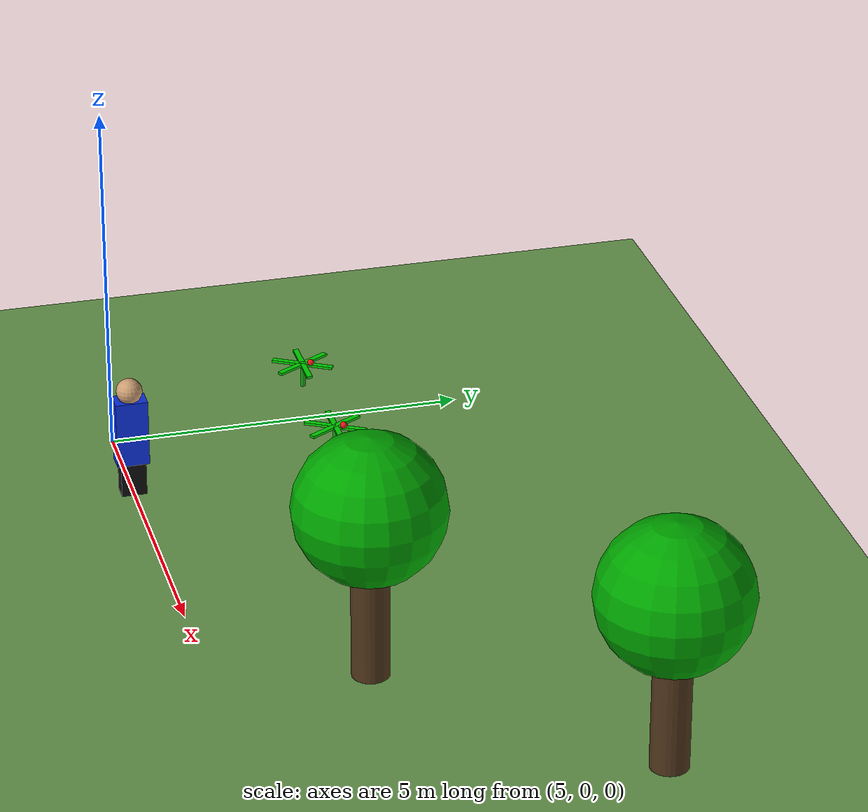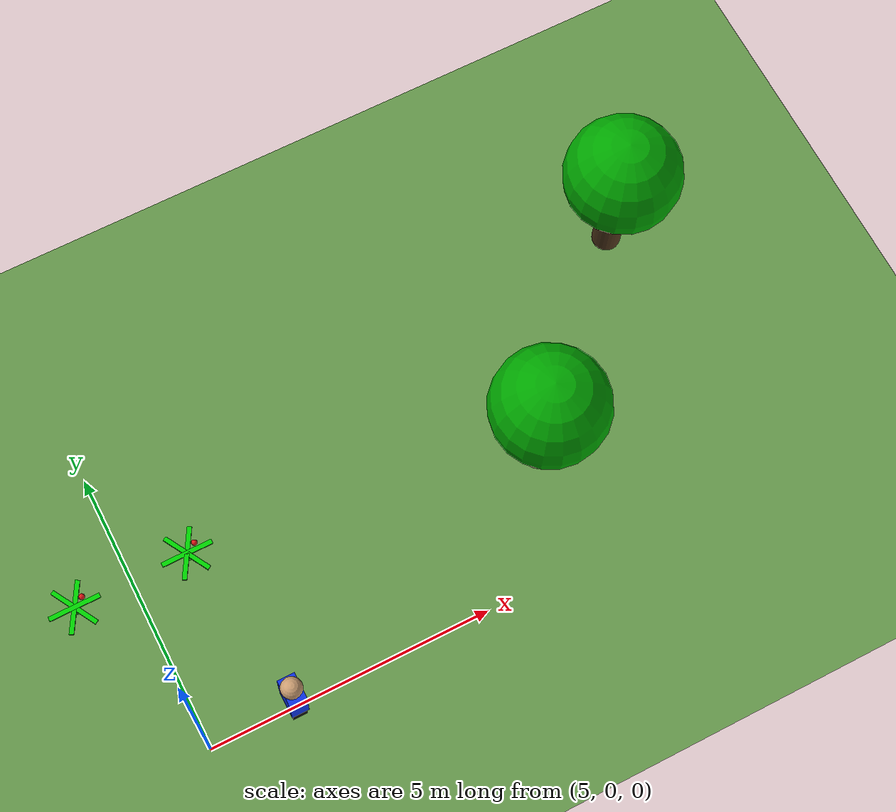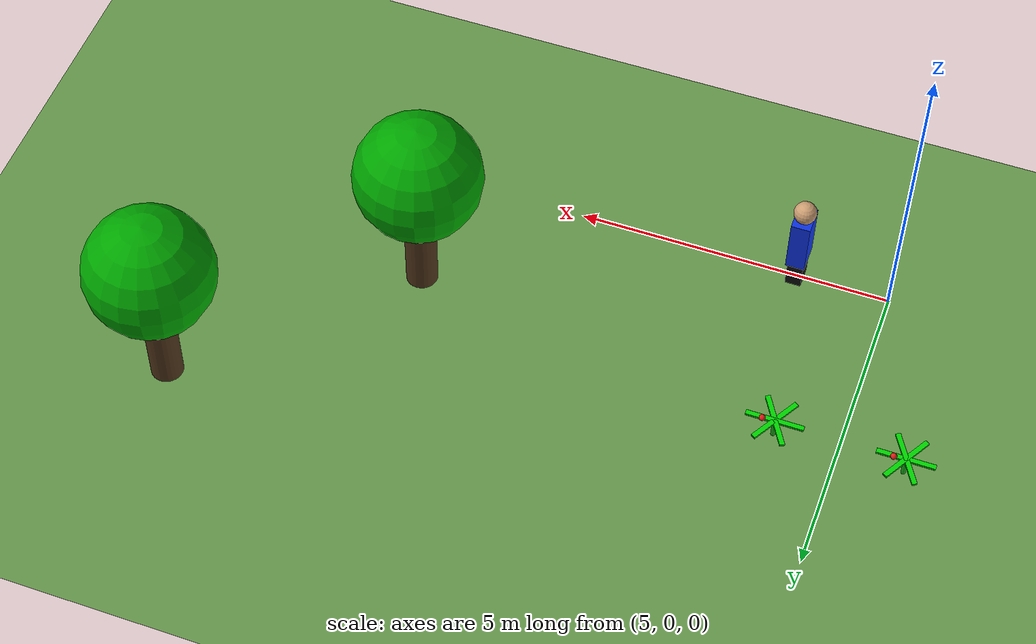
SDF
<sdf version="1.6">
 <world name="enhanced_farm_world">
  <include><uri>model://sun</uri></include>
  <model name="ground_plane">
   <static>true</static>
   <pose>0 0 -0.01 0 0 0</pose>
   <link name="link">
    <collision name="collision">
     <geometry><plane><normal>0 0 1</normal><size>200 200</size></plane></geometry>
     <surface><friction><ode><mu>0.8</mu><mu2>0.8</mu2></ode></friction></surface>
    </collision>
    <visual name="visual">
     <geometry><plane><normal>0 0 1</normal><size>200 200</size></plane></geometry>
     <material>
      <ambient>0.3 0.5 0.2 1</ambient>
      <diffuse>0.4 0.6 0.3 1</diffuse>
      <specular>0.01 0.01 0.01 1</specular>
     </material>
    </visual>
   </link>
  </model>
  <model name="crop_row1_7">
   <static>true</static>
   <pose>4 3 0 0 0 0</pose>
   <link name="crop_stem">
    <pose>0 0 0.15 0 0 0</pose>
    <collision name="collision">
     <geometry><cylinder><radius>0.035</radius><length>0.30</length></cylinder></geometry>
    </collision>
    <visual name="visual">
     <geometry><cylinder><radius>0.035</radius><length>0.30</length></cylinder></geometry>
     <material><ambient>0.05 0.45 0.05 1</ambient><diffuse>0.08 0.65 0.08 1</diffuse></material>
    </visual>
   </link>
   <link name="leaf_1">
    <pose>0 0 0.35 0 0 0</pose>
    <visual name="visual">
     <geometry><box><size>0.90 0.08 0.035</size></box></geometry>
     <material><ambient>0.0 0.55 0.0 1</ambient><diffuse>0.0 0.85 0.0 1</diffuse></material>
    </visual>
   </link>
   <link name="leaf_2">
    <pose>0 0 0.35 0 0 1.047</pose>
    <visual name="visual">
     <geometry><box><size>0.90 0.08 0.035</size></box></geometry>
     <material><ambient>0.0 0.55 0.0 1</ambient><diffuse>0.0 0.85 0.0 1</diffuse></material>
    </visual>
   </link>
   <link name="leaf_3">
    <pose>0 0 0.35 0 0 2.094</pose>
    <visual name="visual">
     <geometry><box><size>0.90 0.08 0.035</size></box></geometry>
     <material><ambient>0.0 0.55 0.0 1</ambient><diffuse>0.0 0.85 0.0 1</diffuse></material>
    </visual>
   </link>
   <link name="small_fruit">
    <pose>0.18 0.08 0.45 0 0 0</pose>
    <visual name="visual">
     <geometry><sphere><radius>0.05</radius></sphere></geometry>
     <material><ambient>0.8 0.05 0.05 1</ambient><diffuse>0.9 0.1 0.1 1</diffuse></material>
    </visual>
   </link>
   <link name="crop_protection_collision">
    <pose>0 0 0.65 0 0 0</pose>
    <collision name="collision">
     <geometry><cylinder><radius>0.30</radius><length>1.30</length></cylinder></geometry>
    </collision>
   </link>
  </model>
  <model name="crop_row1_8">
   <static>true</static>
   <pose>6 3 0 0 0 0</pose>
   <link name="crop_stem">
    <pose>0 0 0.15 0 0 0</pose>
    <collision name="collision">
     <geometry><cylinder><radius>0.035</radius><length>0.30</length></cylinder></geometry>
    </collision>
    <visual name="visual">
     <geometry><cylinder><radius>0.035</radius><length>0.30</length></cylinder></geometry>
     <material><ambient>0.05 0.45 0.05 1</ambient><diffuse>0.08 0.65 0.08 1</diffuse></material>
    </visual>
   </link>
   <link name="leaf_1">
    <pose>0 0 0.35 0 0 0</pose>
    <visual name="visual">
     <geometry><box><size>0.90 0.08 0.035</size></box></geometry>
     <material><ambient>0.0 0.55 0.0 1</ambient><diffuse>0.0 0.85 0.0 1</diffuse></material>
    </visual>
   </link>
   <link name="leaf_2">
    <pose>0 0 0.35 0 0 1.047</pose>
    <visual name="visual">
     <geometry><box><size>0.90 0.08 0.035</size></box></geometry>
     <material><ambient>0.0 0.55 0.0 1</ambient><diffuse>0.0 0.85 0.0 1</diffuse></material>
    </visual>
   </link>
   <link name="leaf_3">
    <pose>0 0 0.35 0 0 2.094</pose>
    <visual name="visual">
     <geometry><box><size>0.90 0.08 0.035</size></box></geometry>
     <material><ambient>0.0 0.55 0.0 1</ambient><diffuse>0.0 0.85 0.0 1</diffuse></material>
    </visual>
   </link>
   <link name="small_fruit">
    <pose>0.18 0.08 0.45 0 0 0</pose>
    <visual name="visual">
     <geometry><sphere><radius>0.05</radius></sphere></geometry>
     <material><ambient>0.8 0.05 0.05 1</ambient><diffuse>0.9 0.1 0.1 1</diffuse></material>
    </visual>
   </link>
   <link name="crop_protection_collision">
    <pose>0 0 0.65 0 0 0</pose>
    <collision name="collision">
     <geometry><cylinder><radius>0.30</radius><length>1.30</length></cylinder></geometry>
    </collision>
   </link>
  </model>
  <model name="tree_1">
   <static>true</static>
   <pose>12 2 0 0 0 0</pose>
   <link name="trunk">
    <pose>0 0 1.0 0 0 0</pose>
    <collision name="collision">
     <geometry><cylinder><radius>0.25</radius><length>2.0</length></cylinder></geometry>
    </collision>
    <visual name="visual">
     <geometry><cylinder><radius>0.25</radius><length>2.0</length></cylinder></geometry>
     <material><ambient>0.4 0.25 0.1 1</ambient><diffuse>0.3 0.2 0.1 1</diffuse></material>
    </visual>
   </link>
   <link name="canopy">
    <pose>0 0 2.4 0 0 0</pose>
    <collision name="collision"><geometry><sphere><radius>1.0</radius></sphere></geometry></collision>
    <visual name="visual">
     <geometry><sphere><radius>1.0</radius></sphere></geometry>
     <material><ambient>0.0 0.45 0.0 1</ambient><diffuse>0.0 0.65 0.0 1</diffuse></material>
    </visual>
   </link>
  </model>
  <model name="tree_2">
   <static>true</static>
   <pose>15 5 0 0 0 0</pose>
   <link name="trunk">
    <pose>0 0 1.0 0 0 0</pose>
    <collision name="collision">
     <geometry><cylinder><radius>0.25</radius><length>2.0</length></cylinder></geometry>
    </collision>
    <visual name="visual">
     <geometry><cylinder><radius>0.25</radius><length>2.0</length></cylinder></geometry>
     <material><ambient>0.4 0.25 0.1 1</ambient><diffuse>0.3 0.2 0.1 1</diffuse></material>
    </visual>
   </link>
   <link name="canopy">
    <pose>0 0 2.4 0 0 0</pose>
    <collision name="collision"><geometry><sphere><radius>1.0</radius></sphere></geometry></collision>
    <visual name="visual">
     <geometry><sphere><radius>1.0</radius></sphere></geometry>
     <material><ambient>0.0 0.45 0.0 1</ambient><diffuse>0.0 0.65 0.0 1</diffuse></material>
    </visual>
   </link>
  </model>
  <model name="person_1">
   <static>false</static>
   <pose>6.5 0.0 0 0 0 1.57</pose>
   <link name="body">
    <gravity>false</gravity>
    <kinematic>true</kinematic>
    <inertial>
     <mass>70.0</mass>
     <inertia><ixx>2.0</ixx><iyy>2.0</iyy><izz>1.0</izz><ixy>0</ixy><ixz>0</ixz><iyz>0</iyz></inertia>
    </inertial>
    <collision name="torso_collision">
     <pose>0 0 0.95 0 0 0</pose>
     <geometry><box><size>0.45 0.30 0.95</size></box></geometry>
    </collision>
    <visual name="torso_visual">
     <pose>0 0 0.95 0 0 0</pose>
     <geometry><box><size>0.45 0.30 0.95</size></box></geometry>
     <material><ambient>0.05 0.20 0.90 1</ambient><diffuse>0.05 0.20 0.90 1</diffuse></material>
    </visual>
    <collision name="head_collision">
     <pose>0 0 1.55 0 0 0</pose>
     <geometry><sphere><radius>0.18</radius></sphere></geometry>
    </collision>
    <visual name="head_visual">
     <pose>0 0 1.55 0 0 0</pose>
     <geometry><sphere><radius>0.18</radius></sphere></geometry>
     <material><ambient>0.80 0.62 0.45 1</ambient><diffuse>0.80 0.62 0.45 1</diffuse></material>
    </visual>
    <collision name="leg_collision">
     <pose>0 0 0.35 0 0 0</pose>
     <geometry><box><size>0.35 0.25 0.70</size></box></geometry>
    </collision>
    <visual name="leg_visual">
     <pose>0 0 0.35 0 0 0</pose>
     <geometry><box><size>0.35 0.25 0.70</size></box></geometry>
     <material><ambient>0.05 0.05 0.05 1</ambient><diffuse>0.05 0.05 0.05 1</diffuse></material>
    </visual>
   </link>
  </model>
 </world>
</sdf>
